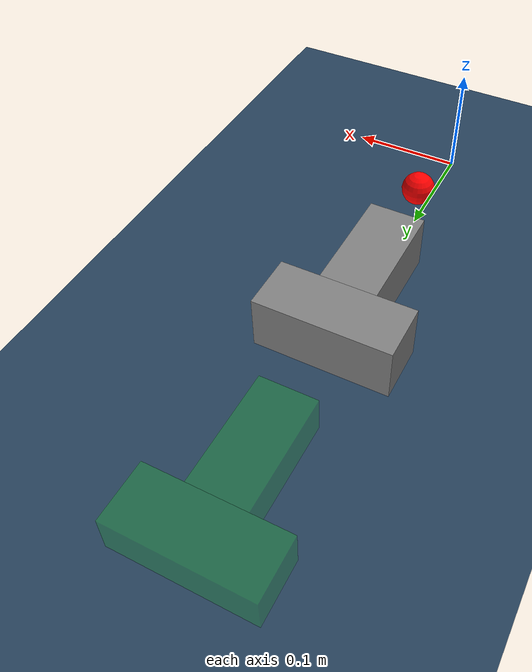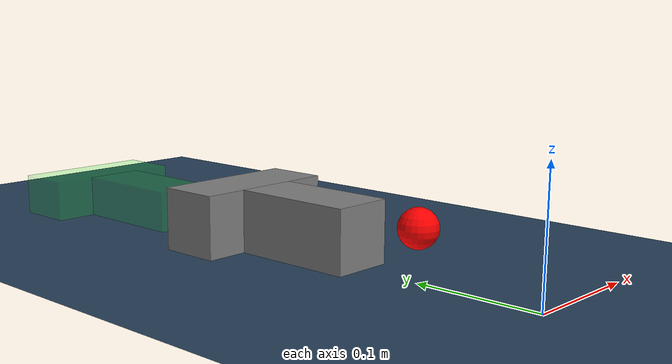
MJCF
<mujoco model="particle_scene">
  <!-- Model that includes like lighting and a ground. -->
  <include file="pusht.xml"/>

  <statistic center="0 0 0" extent="0.9"/>

  <visual>
    <headlight diffuse="0.6 0.6 0.6" ambient="0.3 0.3 0.3" specular="0 0 0"/>
    <rgba haze="0.15 0.25 0.35 1"/>
  </visual>

  <asset>
    <texture type="skybox" builtin="gradient" rgb1="0.3 0.5 0.7" rgb2="0 0 0" width="512" height="3072"/>
    <texture type="2d" name="groundplane" builtin="checker" mark="edge" rgb1="0.2 0.3 0.4" rgb2="0.1 0.2 0.3"
      markrgb="0.8 0.8 0.8" width="300" height="300"/>
    <material name="groundplane" texture="groundplane" texuniform="true" texrepeat="5 5" reflectance="0.2"/>
  </asset>

  <worldbody>
    <light pos="0 0 1"/>
    <geom name="floor" size="0 0 .125" type="plane" material="groundplane" friction="2.0 0.005 0.0001"/>
  </worldbody>

</mujoco>

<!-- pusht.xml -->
<mujoco model="pusht">
  <option timestep="0.01" iterations="1" ls_iterations="4" />

  <default>
    <velocity ctrllimited="true" ctrlrange="-0.25 0.25" kv="0.1"/>
    <default class="goal">
      <geom conaffinity="0" contype="0" rgba="0 1 0 0.2"/>
    </default>
    <geom friction="1.0" solimp="0.0 0.95 0.005" solref="0.02 1"/>
  </default>

  <worldbody>
    <camera name='top_view' pos="-0.276 -0.512 0.817" xyaxes="0.864 -0.503 0.000 0.404 0.694 0.596"/>

    <body name="goal" mocap="true" pos="0.0 0.4 0.009">
      <geom class="goal" name="goal_bottom" type="box" size=".025 0.05 0.025"/>
      <geom class="goal" name="goal_top" type="box" size=".06 0.025 0.025" pos="0.0 0.075 0.0"/>
    </body>

    <body name="block" pos="0.0 0.2 0.025">
      <joint name="T_x" type="slide" pos="0 0 0" axis="1 0 0" />
      <joint name="T_y" type="slide" pos="0 0 0" axis="0 1 0" />
      <joint name="T_z" axis="0 0 1"/>
      <geom name="bottom" type="box" size=".025 0.05 0.025" friction="2.0 0.005 0.0001"/>
      <geom name="top" type="box" size=".06 0.025 0.025" pos="0.0 0.075 0.0" friction="2.0 0.005 0.0001"/>
    </body>

    <body name="pusher" pos="0 .1 .04">
      <joint name="root_x" type="slide" pos="0 0 0" axis="1 0 0" />
      <joint name="root_y" type="slide" pos="0 0 0" axis="0 1 0" />
      <geom name="pusher" type="sphere" size=".015" rgba="1 0 0 1" mass="0.01"/>
      <site name="pusher" pos="0 0 0" rgba="0 0 0 0"/>
    </body>
  </worldbody>

  <actuator>
    <velocity name="x_motor" joint="root_x" />
    <velocity name="y_motor" joint="root_y" />
  </actuator>

  <sensor>
    <framepos name="position" objtype="body" objname="block" reftype="body" refname="goal"/>
    <framequat name="orientation" objtype="body" objname="block" reftype="body" refname="goal"/>
  </sensor>
</mujoco>
